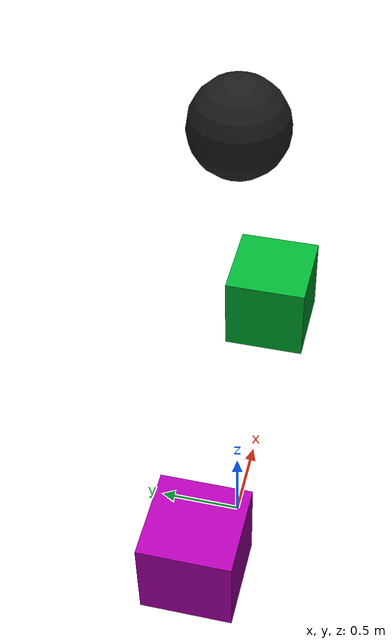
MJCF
<mujoco>
  <option gravity="0 0 -9.81"/>
  <worldbody>
    <light diffuse="0.5 0.5 0.5" pos="0 0 6" dir="0 0 -1"/>
    <body name="ground_plane" pos="0 0 -10">
      <geom type="plane" size="50 50 0.1" rgba="0.95 0.95 0.95 1" friction="1 1 1"/>
    </body>
    <body name="pulley_support" pos="0 0 3">
      <geom type="sphere" size="0.25" rgba="0.1 0.1 0.1 1"/>
    </body>
    <body name="block_heavy" pos="-1 0 1">
      <geom type="box" size="0.25 0.25 0.25" mass="4.5" rgba="0.7 0 0.7 1"/>
      <joint type="free"/>
    </body>
    <body name="block_light" pos="1 0 1">
      <geom type="box" size="0.25 0.25 0.25" mass="1.5" rgba="0 0.7 0.2 1"/>
      <joint type="free"/>
    </body>
  </worldbody>
</mujoco>
